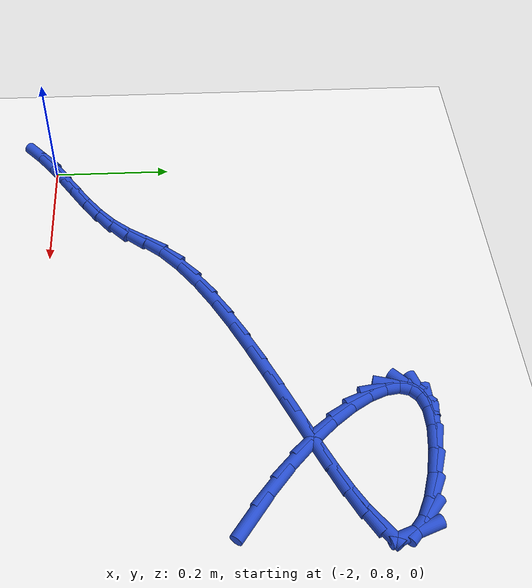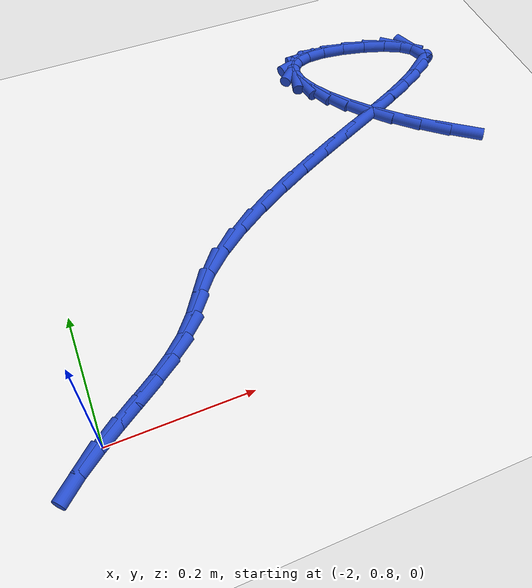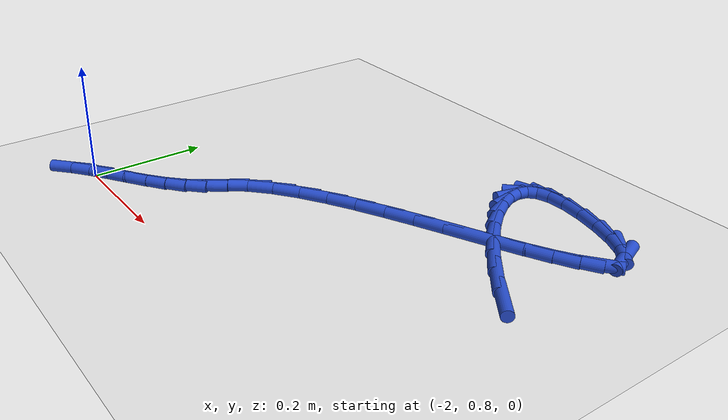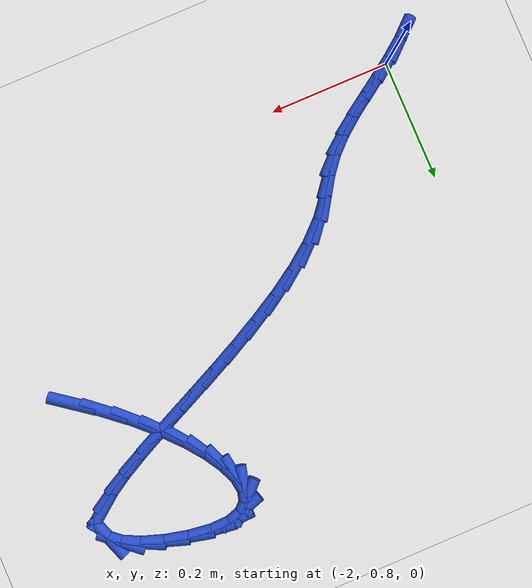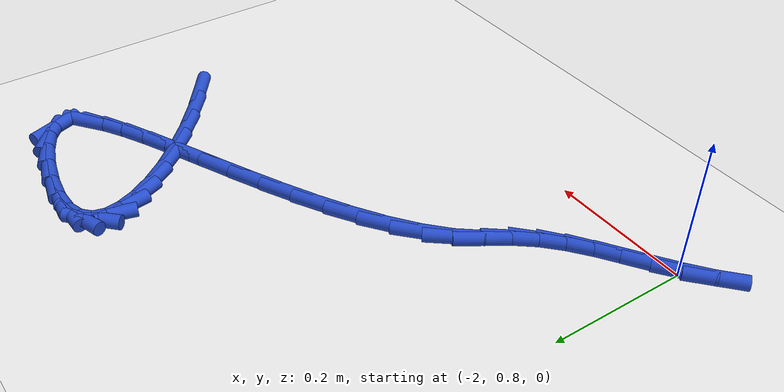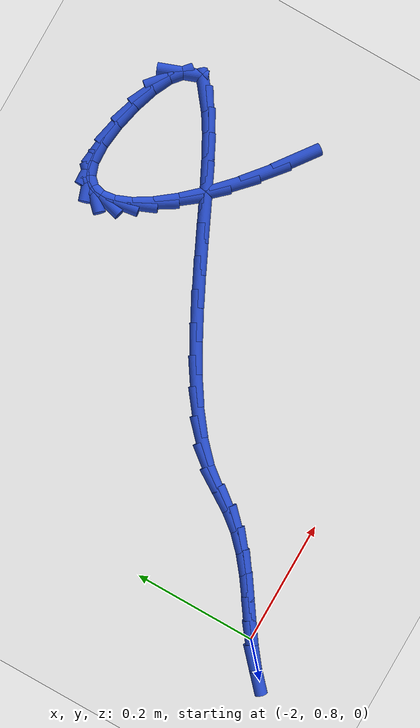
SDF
<sdf version="1.6">
 <world name="default">
  <model name="ground_plane">
   <static>1</static>
   <link name="link">
    <collision name="collision">
     <geometry><plane><normal>0 0 1</normal><size>100 100</size></plane></geometry>
     <surface><friction><ode><mu>100</mu><mu2>50</mu2></ode></friction></surface>
    </collision>
    <visual name="visual">
     <cast_shadows>0</cast_shadows>
     <geometry><plane><normal>0 0 1</normal><size>100 100</size></plane></geometry>
     <material>
      <script><uri>file://media/materials/scripts/gazebo.material</uri><name>Gazebo/WhiteGlow</name></script>
     </material>
    </visual>
   </link>
  </model>
  <model name="line">
   <link name="link_58">
    <pose>-1.3213189471634743 1.105836108231783 0.01 0 1.57 -0.6425103009653051</pose>
    <collision name="collision">
     <geometry><cylinder><radius>0.01</radius><length>0.08</length></cylinder></geometry>
    </collision>
    <visual name="visual">
     <material>
      <script><name>Gazebo/Blue</name><uri>file://media/materials/scripts/gazebo.material</uri></script>
     </material>
     <geometry><cylinder><radius>0.01</radius><length>0.08</length></cylinder></geometry>
    </visual>
   </link>
   <link name="link_59">
    <pose>-1.3636797660690085 1.137541190725577 0.01 0 1.57 -0.7007241162774768</pose>
    <collision name="collision">
     <geometry><cylinder><radius>0.01</radius><length>0.08</length></cylinder></geometry>
    </collision>
    <visual name="visual">
     <material>
      <script><name>Gazebo/Blue</name><uri>file://media/materials/scripts/gazebo.material</uri></script>
     </material>
     <geometry><cylinder><radius>0.01</radius><length>0.08</length></cylinder></geometry>
    </visual>
   </link>
   <link name="link_60">
    <pose>-1.4020634427234828 1.1699188574402 0.01 0 1.57 -0.7625685471487621</pose>
    <collision name="collision">
     <geometry><cylinder><radius>0.01</radius><length>0.08</length></cylinder></geometry>
    </collision>
    <visual name="visual">
     <material>
      <script><name>Gazebo/Blue</name><uri>file://media/materials/scripts/gazebo.material</uri></script>
     </material>
     <geometry><cylinder><radius>0.01</radius><length>0.08</length></cylinder></geometry>
    </visual>
   </link>
   <link name="link_61">
    <pose>-1.4359293169154286 1.202272698255062 0.01 0 1.57 -0.8321236549091593</pose>
    <collision name="collision">
     <geometry><cylinder><radius>0.01</radius><length>0.08</length></cylinder></geometry>
    </collision>
    <visual name="visual">
     <material>
      <script><name>Gazebo/Blue</name><uri>file://media/materials/scripts/gazebo.material</uri></script>
     </material>
     <geometry><cylinder><radius>0.01</radius><length>0.08</length></cylinder></geometry>
    </visual>
   </link>
   <link name="link_62">
    <pose>-1.4647367284333779 1.2339063030495734 0.01 0 1.57 -0.9158397496082105</pose>
    <collision name="collision">
     <geometry><cylinder><radius>0.01</radius><length>0.08</length></cylinder></geometry>
    </collision>
    <visual name="visual">
     <material>
      <script><name>Gazebo/Blue</name><uri>file://media/materials/scripts/gazebo.material</uri></script>
     </material>
     <geometry><cylinder><radius>0.01</radius><length>0.08</length></cylinder></geometry>
    </visual>
   </link>
   <link name="link_63">
    <pose>-1.487945017065864 1.2641232617031455 0.01 0 1.57 -1.0250003215539008</pose>
    <collision name="collision">
     <geometry><cylinder><radius>0.01</radius><length>0.08</length></cylinder></geometry>
    </collision>
    <visual name="visual">
     <material>
      <script><name>Gazebo/Blue</name><uri>file://media/materials/scripts/gazebo.material</uri></script>
     </material>
     <geometry><cylinder><radius>0.01</radius><length>0.08</length></cylinder></geometry>
    </visual>
   </link>
   <link name="link_64">
    <pose>-1.5050135226014159 1.2922271640951863 0.01 0 1.57 -1.181112246915442</pose>
    <collision name="collision">
     <geometry><cylinder><radius>0.01</radius><length>0.08</length></cylinder></geometry>
    </collision>
    <visual name="visual">
     <material>
      <script><name>Gazebo/Blue</name><uri>file://media/materials/scripts/gazebo.material</uri></script>
     </material>
     <geometry><cylinder><radius>0.01</radius><length>0.08</length></cylinder></geometry>
    </visual>
   </link>
   <link name="link_65">
    <pose>-1.5154015848285676 1.3175216001051075 0.01 0 1.57 -1.4264575076706398</pose>
    <collision name="collision">
     <geometry><cylinder><radius>0.01</radius><length>0.08</length></cylinder></geometry>
    </collision>
    <visual name="visual">
     <material>
      <script><name>Gazebo/Blue</name><uri>file://media/materials/scripts/gazebo.material</uri></script>
     </material>
     <geometry><cylinder><radius>0.01</radius><length>0.08</length></cylinder></geometry>
    </visual>
   </link>
   <link name="link_66">
    <pose>-1.5185685435358498 1.3393101596123196 0.01 0 1.57 1.3152369495499046</pose>
    <collision name="collision">
     <geometry><cylinder><radius>0.01</radius><length>0.08</length></cylinder></geometry>
    </collision>
    <visual name="visual">
     <material>
      <script><name>Gazebo/Blue</name><uri>file://media/materials/scripts/gazebo.material</uri></script>
     </material>
     <geometry><cylinder><radius>0.01</radius><length>0.08</length></cylinder></geometry>
    </visual>
   </link>
   <link name="link_67">
    <pose>-1.513973738511795 1.3568964324962312 0.01 0 1.57 0.7772039194500694</pose>
    <collision name="collision">
     <geometry><cylinder><radius>0.01</radius><length>0.08</length></cylinder></geometry>
    </collision>
    <visual name="visual">
     <material>
      <script><name>Gazebo/Blue</name><uri>file://media/materials/scripts/gazebo.material</uri></script>
     </material>
     <geometry><cylinder><radius>0.01</radius><length>0.08</length></cylinder></geometry>
    </visual>
   </link>
   <link name="link_68">
    <pose>-1.501076509544935 1.3695840086362543 0.01 0 1.57 0.31534926616459</pose>
    <collision name="collision">
     <geometry><cylinder><radius>0.01</radius><length>0.08</length></cylinder></geometry>
    </collision>
    <visual name="visual">
     <material>
      <script><name>Gazebo/Blue</name><uri>file://media/materials/scripts/gazebo.material</uri></script>
     </material>
     <geometry><cylinder><radius>0.01</radius><length>0.08</length></cylinder></geometry>
    </visual>
   </link>
   <link name="link_69">
    <pose>-1.4793361964238012 1.3766764779117981 0.01 0 1.57 0.029635866669905055</pose>
    <collision name="collision">
     <geometry><cylinder><radius>0.01</radius><length>0.08</length></cylinder></geometry>
    </collision>
    <visual name="visual">
     <material>
      <script><name>Gazebo/Blue</name><uri>file://media/materials/scripts/gazebo.material</uri></script>
     </material>
     <geometry><cylinder><radius>0.01</radius><length>0.08</length></cylinder></geometry>
    </visual>
   </link>
   <link name="link_70">
    <pose>-1.4485081058885136 1.3775903626585544 0.01 0 1.57 -0.1255170046728519</pose>
    <collision name="collision">
     <geometry><cylinder><radius>0.01</radius><length>0.08</length></cylinder></geometry>
    </collision>
    <visual name="visual">
     <material>
      <script><name>Gazebo/Blue</name><uri>file://media/materials/scripts/gazebo.material</uri></script>
     </material>
     <geometry><cylinder><radius>0.01</radius><length>0.08</length></cylinder></geometry>
    </visual>
   </link>
   <link name="link_71">
    <pose>-1.4114044446888037 1.372908610128369 0.01 0 1.57 -0.22828666751479357</pose>
    <collision name="collision">
     <geometry><cylinder><radius>0.01</radius><length>0.08</length></cylinder></geometry>
    </collision>
    <visual name="visual">
     <material>
      <script><name>Gazebo/Blue</name><uri>file://media/materials/scripts/gazebo.material</uri></script>
     </material>
     <geometry><cylinder><radius>0.01</radius><length>0.08</length></cylinder></geometry>
    </visual>
   </link>
   <link name="link_72">
    <pose>-1.3726414870758428 1.3639025477220934 0.01 0 1.57 -0.32483080300436346</pose>
    <collision name="collision">
     <geometry><cylinder><radius>0.01</radius><length>0.08</length></cylinder></geometry>
    </collision>
    <visual name="visual">
     <material>
      <script><name>Gazebo/Blue</name><uri>file://media/materials/scripts/gazebo.material</uri></script>
     </material>
     <geometry><cylinder><radius>0.01</radius><length>0.08</length></cylinder></geometry>
    </visual>
   </link>
   <link name="link_73">
    <pose>-1.336858850204935 1.3518524098198406 0.01 0 1.57 -0.45602378055793685</pose>
    <collision name="collision">
     <geometry><cylinder><radius>0.01</radius><length>0.08</length></cylinder></geometry>
    </collision>
    <visual name="visual">
     <material>
      <script><name>Gazebo/Blue</name><uri>file://media/materials/scripts/gazebo.material</uri></script>
     </material>
     <geometry><cylinder><radius>0.01</radius><length>0.08</length></cylinder></geometry>
    </visual>
   </link>
   <link name="link_74">
    <pose>-1.3086961512313853 1.3380384308017252 0.01 0 1.57 -0.7119718156792585</pose>
    <collision name="collision">
     <geometry><cylinder><radius>0.01</radius><length>0.08</length></cylinder></geometry>
    </collision>
    <visual name="visual">
     <material>
      <script><name>Gazebo/Blue</name><uri>file://media/materials/scripts/gazebo.material</uri></script>
     </material>
     <geometry><cylinder><radius>0.01</radius><length>0.08</length></cylinder></geometry>
    </visual>
   </link>
   <link name="link_75">
    <pose>-1.291885096465156 1.3235311114909836 0.01 0 1.57 -1.2162652560521983</pose>
    <collision name="collision">
     <geometry><cylinder><radius>0.01</radius><length>0.08</length></cylinder></geometry>
    </collision>
    <visual name="visual">
     <material>
      <script><name>Gazebo/Blue</name><uri>file://media/materials/scripts/gazebo.material</uri></script>
     </material>
     <geometry><cylinder><radius>0.01</radius><length>0.08</length></cylinder></geometry>
    </visual>
   </link>
   <link name="link_78">
    <pose>-1.3045345592298325 1.276772299533343 0.01 0 1.57 0.66290122454724</pose>
    <collision name="collision">
     <geometry><cylinder><radius>0.01</radius><length>0.08</length></cylinder></geometry>
    </collision>
    <visual name="visual">
     <material>
      <script><name>Gazebo/Blue</name><uri>file://media/materials/scripts/gazebo.material</uri></script>
     </material>
     <geometry><cylinder><radius>0.01</radius><length>0.08</length></cylinder></geometry>
    </visual>
   </link>
   <link name="link_79">
    <pose>-1.3260828417641701 1.2599481727843762 0.01 0 1.57 0.5533490292605342</pose>
    <collision name="collision">
     <geometry><cylinder><radius>0.01</radius><length>0.08</length></cylinder></geometry>
    </collision>
    <visual name="visual">
     <material>
      <script><name>Gazebo/Blue</name><uri>file://media/materials/scripts/gazebo.material</uri></script>
     </material>
     <geometry><cylinder><radius>0.01</radius><length>0.08</length></cylinder></geometry>
    </visual>
   </link>
   <link name="link_80">
    <pose>-1.3544491453835972 1.2424256649899164 0.01 0 1.57 0.4921232388463938</pose>
    <collision name="collision">
     <geometry><cylinder><radius>0.01</radius><length>0.08</length></cylinder></geometry>
    </collision>
    <visual name="visual">
     <material>
      <script><name>Gazebo/Blue</name><uri>file://media/materials/scripts/gazebo.material</uri></script>
     </material>
     <geometry><cylinder><radius>0.01</radius><length>0.08</length></cylinder></geometry>
    </visual>
   </link>
   <link name="link_81">
    <pose>-1.3885247442553348 1.2241571043515946 0.01 0 1.57 0.45792657103469936</pose>
    <collision name="collision">
     <geometry><cylinder><radius>0.01</radius><length>0.08</length></cylinder></geometry>
    </collision>
    <visual name="visual">
     <material>
      <script><name>Gazebo/Blue</name><uri>file://media/materials/scripts/gazebo.material</uri></script>
     </material>
     <geometry><cylinder><radius>0.01</radius><length>0.08</length></cylinder></geometry>
    </visual>
   </link>
   <link name="link_82">
    <pose>-1.427200912546602 1.2050948190710418 0.01 0 1.57 0.4410051332695756</pose>
    <collision name="collision">
     <geometry><cylinder><radius>0.01</radius><length>0.08</length></cylinder></geometry>
    </collision>
    <visual name="visual">
     <material>
      <script><name>Gazebo/Blue</name><uri>file://media/materials/scripts/gazebo.material</uri></script>
     </material>
     <geometry><cylinder><radius>0.01</radius><length>0.08</length></cylinder></geometry>
    </visual>
   </link>
   <link name="link_83">
    <pose>-1.46936892442462 1.185191137349888 0.01 0 1.57 0.43666812972561725</pose>
    <collision name="collision">
     <geometry><cylinder><radius>0.01</radius><length>0.08</length></cylinder></geometry>
    </collision>
    <visual name="visual">
     <material>
      <script><name>Gazebo/Blue</name><uri>file://media/materials/scripts/gazebo.material</uri></script>
     </material>
     <geometry><cylinder><radius>0.01</radius><length>0.08</length></cylinder></geometry>
    </visual>
   </link>
   <link name="link_84">
    <pose>-1.5139200540566082 1.164398387389764 0.01 0 1.57 0.44277808306654465</pose>
    <collision name="collision">
     <geometry><cylinder><radius>0.01</radius><length>0.08</length></cylinder></geometry>
    </collision>
    <visual name="visual">
     <material>
      <script><name>Gazebo/Blue</name><uri>file://media/materials/scripts/gazebo.material</uri></script>
     </material>
     <geometry><cylinder><radius>0.01</radius><length>0.08</length></cylinder></geometry>
    </visual>
   </link>
   <link name="link_85">
    <pose>-1.5597455756097887 1.1426688973923003 0.01 0 1.57 0.4587356845819808</pose>
    <collision name="collision">
     <geometry><cylinder><radius>0.01</radius><length>0.08</length></cylinder></geometry>
    </collision>
    <visual name="visual">
     <material>
      <script><name>Gazebo/Blue</name><uri>file://media/materials/scripts/gazebo.material</uri></script>
     </material>
     <geometry><cylinder><radius>0.01</radius><length>0.08</length></cylinder></geometry>
    </visual>
   </link>
   <link name="link_86">
    <pose>-1.6057367632513793 1.1199549955591277 0.01 0 1.57 0.4851112389864574</pose>
    <collision name="collision">
     <geometry><cylinder><radius>0.01</radius><length>0.08</length></cylinder></geometry>
    </collision>
    <visual name="visual">
     <material>
      <script><name>Gazebo/Blue</name><uri>file://media/materials/scripts/gazebo.material</uri></script>
     </material>
     <geometry><cylinder><radius>0.01</radius><length>0.08</length></cylinder></geometry>
    </visual>
   </link>
   <link name="link_87">
    <pose>-1.6507848911486018 1.0962090100918767 0.01 0 1.57 0.5236300175824572</pose>
    <collision name="collision">
     <geometry><cylinder><radius>0.01</radius><length>0.08</length></cylinder></geometry>
    </collision>
    <visual name="visual">
     <material>
      <script><name>Gazebo/Blue</name><uri>file://media/materials/scripts/gazebo.material</uri></script>
     </material>
     <geometry><cylinder><radius>0.01</radius><length>0.08</length></cylinder></geometry>
    </visual>
   </link>
   <link name="link_88">
    <pose>-1.693781233468676 1.0713832691921776 0.01 0 1.57 0.577431169883833</pose>
    <collision name="collision">
     <geometry><cylinder><radius>0.01</radius><length>0.08</length></cylinder></geometry>
    </collision>
    <visual name="visual">
     <material>
      <script><name>Gazebo/Blue</name><uri>file://media/materials/scripts/gazebo.material</uri></script>
     </material>
     <geometry><cylinder><radius>0.01</radius><length>0.08</length></cylinder></geometry>
    </visual>
   </link>
   <link name="link_89">
    <pose>-1.7336170643788225 1.0454301010616613 0.01 0 1.57 0.6516085908895027</pose>
    <collision name="collision">
     <geometry><cylinder><radius>0.01</radius><length>0.08</length></cylinder></geometry>
    </collision>
    <visual name="visual">
     <material>
      <script><name>Gazebo/Blue</name><uri>file://media/materials/scripts/gazebo.material</uri></script>
     </material>
     <geometry><cylinder><radius>0.01</radius><length>0.08</length></cylinder></geometry>
    </visual>
   </link>
   <link name="link_90">
    <pose>-1.7691836580462608 1.0183018339019585 0.01 0 1.57 0.75401791410238</pose>
    <collision name="collision">
     <geometry><cylinder><radius>0.01</radius><length>0.08</length></cylinder></geometry>
    </collision>
    <visual name="visual">
     <material>
      <script><name>Gazebo/Blue</name><uri>file://media/materials/scripts/gazebo.material</uri></script>
     </material>
     <geometry><cylinder><radius>0.01</radius><length>0.08</length></cylinder></geometry>
    </visual>
   </link>
   <link name="link_91">
    <pose>-1.7993722886382115 0.9899507959146994 0.01 0 1.57 0.8955614702218135</pose>
    <collision name="collision">
     <geometry><cylinder><radius>0.01</radius><length>0.08</length></cylinder></geometry>
    </collision>
    <visual name="visual">
     <material>
      <script><name>Gazebo/Blue</name><uri>file://media/materials/scripts/gazebo.material</uri></script>
     </material>
     <geometry><cylinder><radius>0.01</radius><length>0.08</length></cylinder></geometry>
    </visual>
   </link>
   <link name="link_92">
    <pose>-1.8230888615152212 0.9603350783114122 0.01 0 1.57 1.0013190490790624</pose>
    <collision name="collision">
     <geometry><cylinder><radius>0.01</radius><length>0.08</length></cylinder></geometry>
    </collision>
    <visual name="visual">
     <material>
      <script><name>Gazebo/Blue</name><uri>file://media/materials/scripts/gazebo.material</uri></script>
     </material>
     <geometry><cylinder><radius>0.01</radius><length>0.08</length></cylinder></geometry>
    </visual>
   </link>
   <link name="link_93">
    <pose>-1.842151814773364 0.9305599757208243 0.01 0 1.57 0.9001490424306415</pose>
    <collision name="collision">
     <geometry><cylinder><radius>0.01</radius><length>0.08</length></cylinder></geometry>
    </collision>
    <visual name="visual">
     <material>
      <script><name>Gazebo/Blue</name><uri>file://media/materials/scripts/gazebo.material</uri></script>
     </material>
     <geometry><cylinder><radius>0.01</radius><length>0.08</length></cylinder></geometry>
    </visual>
   </link>
   <link name="link_94">
    <pose>-1.8635121735286975 0.9036343034054433 0.01 0 1.57 0.7661504969836052</pose>
    <collision name="collision">
     <geometry><cylinder><radius>0.01</radius><length>0.08</length></cylinder></geometry>
    </collision>
    <visual name="visual">
     <material>
      <script><name>Gazebo/Blue</name><uri>file://media/materials/scripts/gazebo.material</uri></script>
     </material>
     <geometry><cylinder><radius>0.01</radius><length>0.08</length></cylinder></geometry>
    </visual>
   </link>
   <link name="link_95">
    <pose>-1.8883876759343605 0.8796984222650036 0.01 0 1.57 0.6713382097460509</pose>
    <collision name="collision">
     <geometry><cylinder><radius>0.01</radius><length>0.08</length></cylinder></geometry>
    </collision>
    <visual name="visual">
     <material>
      <script><name>Gazebo/Blue</name><uri>file://media/materials/scripts/gazebo.material</uri></script>
     </material>
     <geometry><cylinder><radius>0.01</radius><length>0.08</length></cylinder></geometry>
    </visual>
   </link>
   <link name="link_96">
    <pose>-1.9158756291051882 0.8578610398859636 0.01 0 1.57 0.6151483426359216</pose>
    <collision name="collision">
     <geometry><cylinder><radius>0.01</radius><length>0.08</length></cylinder></geometry>
    </collision>
    <visual name="visual">
     <material>
      <script><name>Gazebo/Blue</name><uri>file://media/materials/scripts/gazebo.material</uri></script>
     </material>
     <geometry><cylinder><radius>0.01</radius><length>0.08</length></cylinder></geometry>
    </visual>
   </link>
   <link name="link_97">
    <pose>-1.9450723225447477 0.8372303687563727 0.01 0 1.57 0.5952270633644497</pose>
    <collision name="collision">
     <geometry><cylinder><radius>0.01</radius><length>0.08</length></cylinder></geometry>
    </collision>
    <visual name="visual">
     <material>
      <script><name>Gazebo/Blue</name><uri>file://media/materials/scripts/gazebo.material</uri></script>
     </material>
     <geometry><cylinder><radius>0.01</radius><length>0.08</length></cylinder></geometry>
    </visual>
   </link>
   <link name="link_98">
    <pose>-1.9750740457566083 0.8169146213642802 0.01 0 1.57 0.6098384626016562</pose>
    <collision name="collision">
     <geometry><cylinder><radius>0.01</radius><length>0.08</length></cylinder></geometry>
    </collision>
    <visual name="visual">
     <material>
      <script><name>Gazebo/Blue</name><uri>file://media/materials/scripts/gazebo.material</uri></script>
     </material>
     <geometry><cylinder><radius>0.01</radius><length>0.08</length></cylinder></geometry>
    </visual>
   </link>
   <link name="link_99">
    <pose>-2.0049770882443387 0.7960220101977356 0.01 0 1.57 0.6585153079838396</pose>
    <collision name="collision">
     <geometry><cylinder><radius>0.01</radius><length>0.08</length></cylinder></geometry>
    </collision>
    <visual name="visual">
     <material>
      <script><name>Gazebo/Blue</name><uri>file://media/materials/scripts/gazebo.material</uri></script>
     </material>
     <geometry><cylinder><radius>0.01</radius><length>0.08</length></cylinder></geometry>
    </visual>
   </link>
   <link name="link_100">
    <pose>-2.0338777395115066 0.7736607477447869 0.01 0 1.57 0.7410100220470067</pose>
    <collision name="collision">
     <geometry><cylinder><radius>0.01</radius><length>0.08</length></cylinder></geometry>
    </collision>
    <visual name="visual">
     <material>
      <script><name>Gazebo/Blue</name><uri>file://media/materials/scripts/gazebo.material</uri></script>
     </material>
     <geometry><cylinder><radius>0.01</radius><length>0.08</length></cylinder></geometry>
    </visual>
   </link>
  </model>
 </world>
</sdf>
